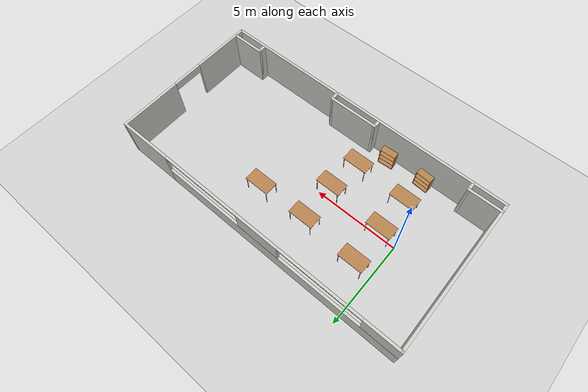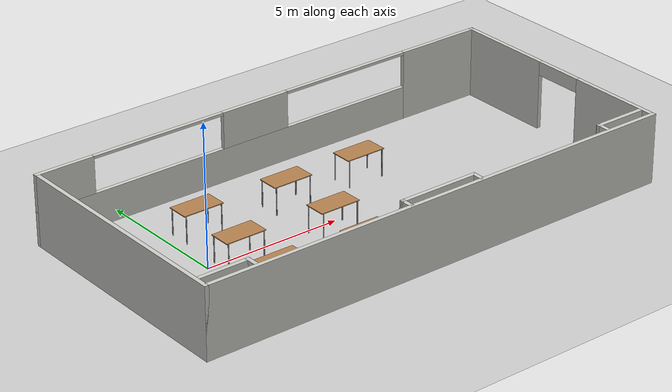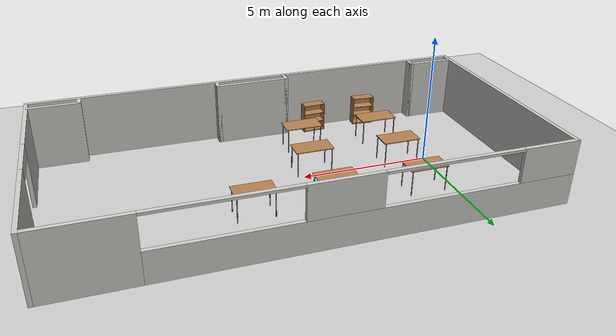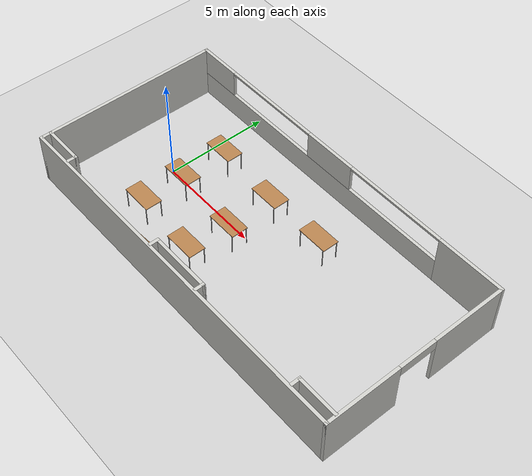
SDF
<sdf version="1.6">
 <world name="default">
  <model name="ground_plane">
   <static>1</static>
   <link name="link">
    <collision name="collision">
     <geometry><plane><normal>0 0 1</normal><size>100 100</size></plane></geometry>
     <surface>
      <contact><collide_bitmask>65535</collide_bitmask></contact>
      <friction><ode><mu>100</mu><mu2>50</mu2></ode></friction>
     </surface>
    </collision>
    <visual name="visual">
     <cast_shadows>0</cast_shadows>
     <geometry><plane><normal>0 0 1</normal><size>100 100</size></plane></geometry>
     <material>
      <script><uri>file://media/materials/scripts/gazebo.material</uri><name>Gazebo/Grey</name></script>
     </material>
    </visual>
   </link>
  </model>
  <model name="lab_room">
   <pose>5.75394 0.057613 0 0 -0 0</pose>
   <link name="Wall_1">
    <collision name="Wall_1_Collision">
     <geometry><box><size>9 0.15 2.5</size></box></geometry>
     <pose>0 0 1.25 0 -0 0</pose>
    </collision>
    <visual name="Wall_1_Visual">
     <pose>0 0 1.25 0 -0 0</pose>
     <geometry><box><size>9 0.15 2.5</size></box></geometry>
     <material>
      <script><uri>file://media/materials/scripts/gazebo.material</uri><name>Gazebo/CeilingTiled</name></script>
      <ambient>1 1 1 1</ambient>
     </material>
     <meta><layer>0</layer></meta>
    </visual>
    <pose>-8.925 0 0 0 -0 -1.5708</pose>
   </link>
   <link name="Wall_10">
    <collision name="Wall_10_Collision">
     <geometry><box><size>0.5 0.15 2.5</size></box></geometry>
     <pose>0 0 1.25 0 -0 0</pose>
    </collision>
    <visual name="Wall_10_Visual">
     <pose>0 0 1.25 0 -0 0</pose>
     <geometry><box><size>0.5 0.15 2.5</size></box></geometry>
     <material>
      <script><uri>file://media/materials/scripts/gazebo.material</uri><name>Gazebo/CeilingTiled</name></script>
      <ambient>1 1 1 1</ambient>
     </material>
     <meta><layer>0</layer></meta>
    </visual>
    <pose>7.0054 -4.11725 0 0 -0 -1.5708</pose>
   </link>
   <link name="Wall_12">
    <collision name="Wall_12_Collision">
     <geometry><box><size>0.5 0.15 2.5</size></box></geometry>
     <pose>0 0 1.25 0 -0 0</pose>
    </collision>
    <visual name="Wall_12_Visual">
     <pose>0 0 1.25 0 -0 0</pose>
     <geometry><box><size>0.5 0.15 2.5</size></box></geometry>
     <material>
      <script><uri>file://media/materials/scripts/gazebo.material</uri><name>Gazebo/CeilingTiled</name></script>
      <ambient>1 1 1 1</ambient>
     </material>
     <meta><layer>0</layer></meta>
    </visual>
    <pose>-1.26173 -4.16952 0 0 -0 1.5708</pose>
   </link>
   <link name="Wall_13">
    <collision name="Wall_13_Collision">
     <geometry><box><size>3 0.15 2.5</size></box></geometry>
     <pose>0 0 1.25 0 -0 0</pose>
    </collision>
    <visual name="Wall_13_Visual">
     <pose>0 0 1.25 0 -0 0</pose>
     <geometry><box><size>3 0.15 2.5</size></box></geometry>
     <material>
      <script><uri>file://media/materials/scripts/gazebo.material</uri><name>Gazebo/CeilingTiled</name></script>
      <ambient>1 1 1 1</ambient>
     </material>
     <meta><layer>0</layer></meta>
    </visual>
    <pose>0.163271 -3.99452 0 0 -0 0</pose>
   </link>
   <link name="Wall_14">
    <collision name="Wall_14_Collision">
     <geometry><box><size>0.5 0.15 2.5</size></box></geometry>
     <pose>0 0 1.25 0 -0 0</pose>
    </collision>
    <visual name="Wall_14_Visual">
     <pose>0 0 1.25 0 -0 0</pose>
     <geometry><box><size>0.5 0.15 2.5</size></box></geometry>
     <material>
      <script><uri>file://media/materials/scripts/gazebo.material</uri><name>Gazebo/CeilingTiled</name></script>
      <ambient>1 1 1 1</ambient>
     </material>
     <meta><layer>0</layer></meta>
    </visual>
    <pose>1.58827 -4.16952 0 0 -0 -1.5708</pose>
   </link>
   <link name="Wall_16">
    <collision name="Wall_16_Collision">
     <geometry><box><size>2 0.15 2.5</size></box></geometry>
     <pose>0 0 1.25 0 -0 0</pose>
    </collision>
    <visual name="Wall_16_Visual">
     <pose>0 0 1.25 0 -0 0</pose>
     <geometry><box><size>2 0.15 2.5</size></box></geometry>
     <material>
      <script><uri>file://media/materials/scripts/gazebo.material</uri><name>Gazebo/CeilingTiled</name></script>
      <ambient>1 1 1 1</ambient>
     </material>
     <meta><layer>0</layer></meta>
    </visual>
    <pose>-7.97989 -3.96236 0 0 -0 0</pose>
   </link>
   <link name="Wall_17">
    <collision name="Wall_17_Collision">
     <geometry><box><size>0.5 0.15 2.5</size></box></geometry>
     <pose>0 0 1.25 0 -0 0</pose>
    </collision>
    <visual name="Wall_17_Visual">
     <pose>0 0 1.25 0 -0 0</pose>
     <geometry><box><size>0.5 0.15 2.5</size></box></geometry>
     <material>
      <script><uri>file://media/materials/scripts/gazebo.material</uri><name>Gazebo/CeilingTiled</name></script>
      <ambient>1 1 1 1</ambient>
     </material>
     <meta><layer>0</layer></meta>
    </visual>
    <pose>-7.05489 -4.13736 0 0 -0 -1.5708</pose>
   </link>
   <link name="Wall_2">
    <collision name="Wall_2_Collision">
     <geometry><box><size>18 0.15 2.5</size></box></geometry>
     <pose>0 0 1.25 0 -0 0</pose>
    </collision>
    <visual name="Wall_2_Visual">
     <pose>0 0 1.25 0 -0 0</pose>
     <geometry><box><size>18 0.15 2.5</size></box></geometry>
     <material>
      <script><uri>file://media/materials/scripts/gazebo.material</uri><name>Gazebo/CeilingTiled</name></script>
      <ambient>1 1 1 1</ambient>
     </material>
     <meta><layer>0</layer></meta>
    </visual>
    <pose>0 -4.425 0 0 -0 0</pose>
   </link>
   <link name="Wall_3">
    <pose>8.925 0 0 0 -0 1.5708</pose>
    <visual name="Wall_3_Visual_0">
     <pose>-2.71005 0 1.25 0 -0 0</pose>
     <geometry><box><size>3.5799 0.15 2.5</size></box></geometry>
     <material>
      <script><uri>file://media/materials/scripts/gazebo.material</uri><name>Gazebo/CeilingTiled</name></script>
      <ambient>1 1 1 1</ambient>
     </material>
     <meta><layer>0</layer></meta>
    </visual>
    <collision name="Wall_3_Collision_0">
     <geometry><box><size>3.5799 0.15 2.5</size></box></geometry>
     <pose>-2.71005 0 1.25 0 -0 0</pose>
    </collision>
    <visual name="Wall_3_Visual_1">
     <pose>2.68995 0 1.25 0 -0 0</pose>
     <geometry><box><size>3.6201 0.15 2.5</size></box></geometry>
     <material>
      <script><uri>file://media/materials/scripts/gazebo.material</uri><name>Gazebo/CeilingTiled</name></script>
      <ambient>1 1 1 1</ambient>
     </material>
     <meta><layer>0</layer></meta>
    </visual>
    <collision name="Wall_3_Collision_1">
     <geometry><box><size>3.6201 0.15 2.5</size></box></geometry>
     <pose>2.68995 0 1.25 0 -0 0</pose>
    </collision>
    <visual name="Wall_3_Visual_2">
     <pose>-0.020099 0 2.25 0 -0 0</pose>
     <geometry><box><size>1.8 0.15 0.5</size></box></geometry>
     <material>
      <script><uri>file://media/materials/scripts/gazebo.material</uri><name>Gazebo/CeilingTiled</name></script>
      <ambient>1 1 1 1</ambient>
     </material>
     <meta><layer>0</layer></meta>
    </visual>
    <collision name="Wall_3_Collision_2">
     <geometry><box><size>1.8 0.15 0.5</size></box></geometry>
     <pose>-0.020099 0 2.25 0 -0 0</pose>
    </collision>
   </link>
   <link name="Wall_4">
    <pose>0 4.425 0 0 -0 3.14159</pose>
    <visual name="Wall_4_Visual_0">
     <pose>-7.38191 0 1.25 0 -0 0</pose>
     <geometry><box><size>3.23617 0.15 2.5</size></box></geometry>
     <material>
      <script><uri>file://media/materials/scripts/gazebo.material</uri><name>Gazebo/CeilingTiled</name></script>
      <ambient>1 1 1 1</ambient>
     </material>
     <meta><layer>0</layer></meta>
    </visual>
    <collision name="Wall_4_Collision_0">
     <geometry><box><size>3.23617 0.15 2.5</size></box></geometry>
     <pose>-7.38191 0 1.25 0 -0 0</pose>
    </collision>
    <visual name="Wall_4_Visual_1">
     <pose>1.61809 0 0.6 0 -0 0</pose>
     <geometry><box><size>14.7638 0.15 1.2</size></box></geometry>
     <material>
      <script><uri>file://media/materials/scripts/gazebo.material</uri><name>Gazebo/CeilingTiled</name></script>
      <ambient>1 1 1 1</ambient>
     </material>
     <meta><layer>0</layer></meta>
    </visual>
    <collision name="Wall_4_Collision_1">
     <geometry><box><size>14.7638 0.15 1.2</size></box></geometry>
     <pose>1.61809 0 0.6 0 -0 0</pose>
    </collision>
    <visual name="Wall_4_Visual_2">
     <pose>0.547697 0 1.85 0 -0 0</pose>
     <geometry><box><size>2.62304 0.15 1.3</size></box></geometry>
     <material>
      <script><uri>file://media/materials/scripts/gazebo.material</uri><name>Gazebo/CeilingTiled</name></script>
      <ambient>1 1 1 1</ambient>
     </material>
     <meta><layer>0</layer></meta>
    </visual>
    <collision name="Wall_4_Collision_2">
     <geometry><box><size>2.62304 0.15 1.3</size></box></geometry>
     <pose>0.547697 0 1.85 0 -0 0</pose>
    </collision>
    <visual name="Wall_4_Visual_3">
     <pose>7.92961 0 1.85 0 -0 0</pose>
     <geometry><box><size>2.14078 0.15 1.3</size></box></geometry>
     <material>
      <script><uri>file://media/materials/scripts/gazebo.material</uri><name>Gazebo/CeilingTiled</name></script>
      <ambient>1 1 1 1</ambient>
     </material>
     <meta><layer>0</layer></meta>
    </visual>
    <collision name="Wall_4_Collision_3">
     <geometry><box><size>2.14078 0.15 1.3</size></box></geometry>
     <pose>7.92961 0 1.85 0 -0 0</pose>
    </collision>
    <visual name="Wall_4_Visual_4">
     <pose>-3.26383 0 2.45 0 -0 0</pose>
     <geometry><box><size>5 0.15 0.1</size></box></geometry>
     <material>
      <script><uri>file://media/materials/scripts/gazebo.material</uri><name>Gazebo/CeilingTiled</name></script>
      <ambient>1 1 1 1</ambient>
     </material>
     <meta><layer>0</layer></meta>
    </visual>
    <collision name="Wall_4_Collision_4">
     <geometry><box><size>5 0.15 0.1</size></box></geometry>
     <pose>-3.26383 0 2.45 0 -0 0</pose>
    </collision>
    <visual name="Wall_4_Visual_5">
     <pose>4.35922 0 2.45 0 -0 0</pose>
     <geometry><box><size>5 0.15 0.1</size></box></geometry>
     <material>
      <script><uri>file://media/materials/scripts/gazebo.material</uri><name>Gazebo/CeilingTiled</name></script>
      <ambient>1 1 1 1</ambient>
     </material>
     <meta><layer>0</layer></meta>
    </visual>
    <collision name="Wall_4_Collision_5">
     <geometry><box><size>5 0.15 0.1</size></box></geometry>
     <pose>4.35922 0 2.45 0 -0 0</pose>
    </collision>
   </link>
   <link name="Wall_9">
    <collision name="Wall_9_Collision">
     <geometry><box><size>2 0.15 2.5</size></box></geometry>
     <pose>0 0 1.25 0 -0 0</pose>
    </collision>
    <visual name="Wall_9_Visual">
     <pose>0 0 1.25 0 -0 0</pose>
     <geometry><box><size>2 0.15 2.5</size></box></geometry>
     <material>
      <script><uri>file://media/materials/scripts/gazebo.material</uri><name>Gazebo/CeilingTiled</name></script>
      <ambient>1 1 1 1</ambient>
     </material>
     <meta><layer>0</layer></meta>
    </visual>
    <pose>7.9304 -3.94225 0 0 -0 3.14159</pose>
   </link>
   <static>1</static>
  </model>
  <model name="table">
   <static>1</static>
   <link name="link">
    <collision name="surface">
     <pose>0 0 1 0 -0 0</pose>
     <geometry><box><size>1.5 0.8 0.03</size></box></geometry>
     <surface><friction><ode><mu>0.6</mu><mu2>0.6</mu2></ode></friction></surface>
    </collision>
    <visual name="visual1">
     <pose>0 0 1 0 -0 0</pose>
     <geometry><box><size>1.5 0.8 0.03</size></box></geometry>
     <material>
      <script><uri>file://media/materials/scripts/gazebo.material</uri><name>Gazebo/Wood</name></script>
     </material>
    </visual>
    <collision name="front_left_leg">
     <pose>0.68 0.38 0.5 0 -0 0</pose>
     <geometry><cylinder><radius>0.02</radius><length>1</length></cylinder></geometry>
    </collision>
    <visual name="front_left_leg">
     <pose>0.68 0.38 0.5 0 -0 0</pose>
     <geometry><cylinder><radius>0.02</radius><length>1</length></cylinder></geometry>
     <material>
      <script><uri>file://media/materials/scripts/gazebo.material</uri><name>Gazebo/Grey</name></script>
     </material>
    </visual>
    <collision name="front_right_leg">
     <pose>0.68 -0.38 0.5 0 -0 0</pose>
     <geometry><cylinder><radius>0.02</radius><length>1</length></cylinder></geometry>
    </collision>
    <visual name="front_right_leg">
     <pose>0.68 -0.38 0.5 0 -0 0</pose>
     <geometry><cylinder><radius>0.02</radius><length>1</length></cylinder></geometry>
     <material>
      <script><uri>file://media/materials/scripts/gazebo.material</uri><name>Gazebo/Grey</name></script>
     </material>
    </visual>
    <collision name="back_right_leg">
     <pose>-0.68 -0.38 0.5 0 -0 0</pose>
     <geometry><cylinder><radius>0.02</radius><length>1</length></cylinder></geometry>
    </collision>
    <visual name="back_right_leg">
     <pose>-0.68 -0.38 0.5 0 -0 0</pose>
     <geometry><cylinder><radius>0.02</radius><length>1</length></cylinder></geometry>
     <material>
      <script><uri>file://media/materials/scripts/gazebo.material</uri><name>Gazebo/Grey</name></script>
     </material>
    </visual>
    <collision name="back_left_leg">
     <pose>-0.68 0.38 0.5 0 -0 0</pose>
     <geometry><cylinder><radius>0.02</radius><length>1</length></cylinder></geometry>
    </collision>
    <visual name="back_left_leg">
     <pose>-0.68 0.38 0.5 0 -0 0</pose>
     <geometry><cylinder><radius>0.02</radius><length>1</length></cylinder></geometry>
     <material>
      <script><uri>file://media/materials/scripts/gazebo.material</uri><name>Gazebo/Grey</name></script>
     </material>
    </visual>
   </link>
   <pose>1.08189 -2.2938 0 0 -0 0</pose>
  </model>
  <model name="table_0">
   <static>1</static>
   <link name="link">
    <collision name="surface">
     <pose>0 0 1 0 -0 0</pose>
     <geometry><box><size>1.5 0.8 0.03</size></box></geometry>
     <surface><friction><ode><mu>0.6</mu><mu2>0.6</mu2></ode></friction></surface>
    </collision>
    <visual name="visual1">
     <pose>0 0 1 0 -0 0</pose>
     <geometry><box><size>1.5 0.8 0.03</size></box></geometry>
     <material>
      <script><uri>file://media/materials/scripts/gazebo.material</uri><name>Gazebo/Wood</name></script>
     </material>
    </visual>
    <collision name="front_left_leg">
     <pose>0.68 0.38 0.5 0 -0 0</pose>
     <geometry><cylinder><radius>0.02</radius><length>1</length></cylinder></geometry>
    </collision>
    <visual name="front_left_leg">
     <pose>0.68 0.38 0.5 0 -0 0</pose>
     <geometry><cylinder><radius>0.02</radius><length>1</length></cylinder></geometry>
     <material>
      <script><uri>file://media/materials/scripts/gazebo.material</uri><name>Gazebo/Grey</name></script>
     </material>
    </visual>
    <collision name="front_right_leg">
     <pose>0.68 -0.38 0.5 0 -0 0</pose>
     <geometry><cylinder><radius>0.02</radius><length>1</length></cylinder></geometry>
    </collision>
    <visual name="front_right_leg">
     <pose>0.68 -0.38 0.5 0 -0 0</pose>
     <geometry><cylinder><radius>0.02</radius><length>1</length></cylinder></geometry>
     <material>
      <script><uri>file://media/materials/scripts/gazebo.material</uri><name>Gazebo/Grey</name></script>
     </material>
    </visual>
    <collision name="back_right_leg">
     <pose>-0.68 -0.38 0.5 0 -0 0</pose>
     <geometry><cylinder><radius>0.02</radius><length>1</length></cylinder></geometry>
    </collision>
    <visual name="back_right_leg">
     <pose>-0.68 -0.38 0.5 0 -0 0</pose>
     <geometry><cylinder><radius>0.02</radius><length>1</length></cylinder></geometry>
     <material>
      <script><uri>file://media/materials/scripts/gazebo.material</uri><name>Gazebo/Grey</name></script>
     </material>
    </visual>
    <collision name="back_left_leg">
     <pose>-0.68 0.38 0.5 0 -0 0</pose>
     <geometry><cylinder><radius>0.02</radius><length>1</length></cylinder></geometry>
    </collision>
    <visual name="back_left_leg">
     <pose>-0.68 0.38 0.5 0 -0 0</pose>
     <geometry><cylinder><radius>0.02</radius><length>1</length></cylinder></geometry>
     <material>
      <script><uri>file://media/materials/scripts/gazebo.material</uri><name>Gazebo/Grey</name></script>
     </material>
    </visual>
   </link>
   <pose>1.06456 -0.205149 0 0 -0 0</pose>
  </model>
  <model name="table_1">
   <static>1</static>
   <link name="link">
    <collision name="surface">
     <pose>0 0 1 0 -0 0</pose>
     <geometry><box><size>1.5 0.8 0.03</size></box></geometry>
     <surface><friction><ode><mu>0.6</mu><mu2>0.6</mu2></ode></friction></surface>
    </collision>
    <visual name="visual1">
     <pose>0 0 1 0 -0 0</pose>
     <geometry><box><size>1.5 0.8 0.03</size></box></geometry>
     <material>
      <script><uri>file://media/materials/scripts/gazebo.material</uri><name>Gazebo/Wood</name></script>
     </material>
    </visual>
    <collision name="front_left_leg">
     <pose>0.68 0.38 0.5 0 -0 0</pose>
     <geometry><cylinder><radius>0.02</radius><length>1</length></cylinder></geometry>
    </collision>
    <visual name="front_left_leg">
     <pose>0.68 0.38 0.5 0 -0 0</pose>
     <geometry><cylinder><radius>0.02</radius><length>1</length></cylinder></geometry>
     <material>
      <script><uri>file://media/materials/scripts/gazebo.material</uri><name>Gazebo/Grey</name></script>
     </material>
    </visual>
    <collision name="front_right_leg">
     <pose>0.68 -0.38 0.5 0 -0 0</pose>
     <geometry><cylinder><radius>0.02</radius><length>1</length></cylinder></geometry>
    </collision>
    <visual name="front_right_leg">
     <pose>0.68 -0.38 0.5 0 -0 0</pose>
     <geometry><cylinder><radius>0.02</radius><length>1</length></cylinder></geometry>
     <material>
      <script><uri>file://media/materials/scripts/gazebo.material</uri><name>Gazebo/Grey</name></script>
     </material>
    </visual>
    <collision name="back_right_leg">
     <pose>-0.68 -0.38 0.5 0 -0 0</pose>
     <geometry><cylinder><radius>0.02</radius><length>1</length></cylinder></geometry>
    </collision>
    <visual name="back_right_leg">
     <pose>-0.68 -0.38 0.5 0 -0 0</pose>
     <geometry><cylinder><radius>0.02</radius><length>1</length></cylinder></geometry>
     <material>
      <script><uri>file://media/materials/scripts/gazebo.material</uri><name>Gazebo/Grey</name></script>
     </material>
    </visual>
    <collision name="back_left_leg">
     <pose>-0.68 0.38 0.5 0 -0 0</pose>
     <geometry><cylinder><radius>0.02</radius><length>1</length></cylinder></geometry>
    </collision>
    <visual name="back_left_leg">
     <pose>-0.68 0.38 0.5 0 -0 0</pose>
     <geometry><cylinder><radius>0.02</radius><length>1</length></cylinder></geometry>
     <material>
      <script><uri>file://media/materials/scripts/gazebo.material</uri><name>Gazebo/Grey</name></script>
     </material>
    </visual>
   </link>
   <pose>1.09796 2.05913 0 0 -0 0</pose>
  </model>
  <model name="table_2">
   <static>1</static>
   <link name="link">
    <collision name="surface">
     <pose>0 0 1 0 -0 0</pose>
     <geometry><box><size>1.5 0.8 0.03</size></box></geometry>
     <surface><friction><ode><mu>0.6</mu><mu2>0.6</mu2></ode></friction></surface>
    </collision>
    <visual name="visual1">
     <pose>0 0 1 0 -0 0</pose>
     <geometry><box><size>1.5 0.8 0.03</size></box></geometry>
     <material>
      <script><uri>file://media/materials/scripts/gazebo.material</uri><name>Gazebo/Wood</name></script>
     </material>
    </visual>
    <collision name="front_left_leg">
     <pose>0.68 0.38 0.5 0 -0 0</pose>
     <geometry><cylinder><radius>0.02</radius><length>1</length></cylinder></geometry>
    </collision>
    <visual name="front_left_leg">
     <pose>0.68 0.38 0.5 0 -0 0</pose>
     <geometry><cylinder><radius>0.02</radius><length>1</length></cylinder></geometry>
     <material>
      <script><uri>file://media/materials/scripts/gazebo.material</uri><name>Gazebo/Grey</name></script>
     </material>
    </visual>
    <collision name="front_right_leg">
     <pose>0.68 -0.38 0.5 0 -0 0</pose>
     <geometry><cylinder><radius>0.02</radius><length>1</length></cylinder></geometry>
    </collision>
    <visual name="front_right_leg">
     <pose>0.68 -0.38 0.5 0 -0 0</pose>
     <geometry><cylinder><radius>0.02</radius><length>1</length></cylinder></geometry>
     <material>
      <script><uri>file://media/materials/scripts/gazebo.material</uri><name>Gazebo/Grey</name></script>
     </material>
    </visual>
    <collision name="back_right_leg">
     <pose>-0.68 -0.38 0.5 0 -0 0</pose>
     <geometry><cylinder><radius>0.02</radius><length>1</length></cylinder></geometry>
    </collision>
    <visual name="back_right_leg">
     <pose>-0.68 -0.38 0.5 0 -0 0</pose>
     <geometry><cylinder><radius>0.02</radius><length>1</length></cylinder></geometry>
     <material>
      <script><uri>file://media/materials/scripts/gazebo.material</uri><name>Gazebo/Grey</name></script>
     </material>
    </visual>
    <collision name="back_left_leg">
     <pose>-0.68 0.38 0.5 0 -0 0</pose>
     <geometry><cylinder><radius>0.02</radius><length>1</length></cylinder></geometry>
    </collision>
    <visual name="back_left_leg">
     <pose>-0.68 0.38 0.5 0 -0 0</pose>
     <geometry><cylinder><radius>0.02</radius><length>1</length></cylinder></geometry>
     <material>
      <script><uri>file://media/materials/scripts/gazebo.material</uri><name>Gazebo/Grey</name></script>
     </material>
    </visual>
   </link>
   <pose>4.46085 1.83924 0 0 -0 0</pose>
  </model>
  <model name="table_3">
   <static>1</static>
   <link name="link">
    <collision name="surface">
     <pose>0 0 1 0 -0 0</pose>
     <geometry><box><size>1.5 0.8 0.03</size></box></geometry>
     <surface><friction><ode><mu>0.6</mu><mu2>0.6</mu2></ode></friction></surface>
    </collision>
    <visual name="visual1">
     <pose>0 0 1 0 -0 0</pose>
     <geometry><box><size>1.5 0.8 0.03</size></box></geometry>
     <material>
      <script><uri>file://media/materials/scripts/gazebo.material</uri><name>Gazebo/Wood</name></script>
     </material>
    </visual>
    <collision name="front_left_leg">
     <pose>0.68 0.38 0.5 0 -0 0</pose>
     <geometry><cylinder><radius>0.02</radius><length>1</length></cylinder></geometry>
    </collision>
    <visual name="front_left_leg">
     <pose>0.68 0.38 0.5 0 -0 0</pose>
     <geometry><cylinder><radius>0.02</radius><length>1</length></cylinder></geometry>
     <material>
      <script><uri>file://media/materials/scripts/gazebo.material</uri><name>Gazebo/Grey</name></script>
     </material>
    </visual>
    <collision name="front_right_leg">
     <pose>0.68 -0.38 0.5 0 -0 0</pose>
     <geometry><cylinder><radius>0.02</radius><length>1</length></cylinder></geometry>
    </collision>
    <visual name="front_right_leg">
     <pose>0.68 -0.38 0.5 0 -0 0</pose>
     <geometry><cylinder><radius>0.02</radius><length>1</length></cylinder></geometry>
     <material>
      <script><uri>file://media/materials/scripts/gazebo.material</uri><name>Gazebo/Grey</name></script>
     </material>
    </visual>
    <collision name="back_right_leg">
     <pose>-0.68 -0.38 0.5 0 -0 0</pose>
     <geometry><cylinder><radius>0.02</radius><length>1</length></cylinder></geometry>
    </collision>
    <visual name="back_right_leg">
     <pose>-0.68 -0.38 0.5 0 -0 0</pose>
     <geometry><cylinder><radius>0.02</radius><length>1</length></cylinder></geometry>
     <material>
      <script><uri>file://media/materials/scripts/gazebo.material</uri><name>Gazebo/Grey</name></script>
     </material>
    </visual>
    <collision name="back_left_leg">
     <pose>-0.68 0.38 0.5 0 -0 0</pose>
     <geometry><cylinder><radius>0.02</radius><length>1</length></cylinder></geometry>
    </collision>
    <visual name="back_left_leg">
     <pose>-0.68 0.38 0.5 0 -0 0</pose>
     <geometry><cylinder><radius>0.02</radius><length>1</length></cylinder></geometry>
     <material>
      <script><uri>file://media/materials/scripts/gazebo.material</uri><name>Gazebo/Grey</name></script>
     </material>
    </visual>
   </link>
   <pose>4.53977 -0.479619 0 0 -0 0</pose>
  </model>
  <model name="table_4">
   <static>1</static>
   <link name="link">
    <collision name="surface">
     <pose>0 0 1 0 -0 0</pose>
     <geometry><box><size>1.5 0.8 0.03</size></box></geometry>
     <surface><friction><ode><mu>0.6</mu><mu2>0.6</mu2></ode></friction></surface>
    </collision>
    <visual name="visual1">
     <pose>0 0 1 0 -0 0</pose>
     <geometry><box><size>1.5 0.8 0.03</size></box></geometry>
     <material>
      <script><uri>file://media/materials/scripts/gazebo.material</uri><name>Gazebo/Wood</name></script>
     </material>
    </visual>
    <collision name="front_left_leg">
     <pose>0.68 0.38 0.5 0 -0 0</pose>
     <geometry><cylinder><radius>0.02</radius><length>1</length></cylinder></geometry>
    </collision>
    <visual name="front_left_leg">
     <pose>0.68 0.38 0.5 0 -0 0</pose>
     <geometry><cylinder><radius>0.02</radius><length>1</length></cylinder></geometry>
     <material>
      <script><uri>file://media/materials/scripts/gazebo.material</uri><name>Gazebo/Grey</name></script>
     </material>
    </visual>
    <collision name="front_right_leg">
     <pose>0.68 -0.38 0.5 0 -0 0</pose>
     <geometry><cylinder><radius>0.02</radius><length>1</length></cylinder></geometry>
    </collision>
    <visual name="front_right_leg">
     <pose>0.68 -0.38 0.5 0 -0 0</pose>
     <geometry><cylinder><radius>0.02</radius><length>1</length></cylinder></geometry>
     <material>
      <script><uri>file://media/materials/scripts/gazebo.material</uri><name>Gazebo/Grey</name></script>
     </material>
    </visual>
    <collision name="back_right_leg">
     <pose>-0.68 -0.38 0.5 0 -0 0</pose>
     <geometry><cylinder><radius>0.02</radius><length>1</length></cylinder></geometry>
    </collision>
    <visual name="back_right_leg">
     <pose>-0.68 -0.38 0.5 0 -0 0</pose>
     <geometry><cylinder><radius>0.02</radius><length>1</length></cylinder></geometry>
     <material>
      <script><uri>file://media/materials/scripts/gazebo.material</uri><name>Gazebo/Grey</name></script>
     </material>
    </visual>
    <collision name="back_left_leg">
     <pose>-0.68 0.38 0.5 0 -0 0</pose>
     <geometry><cylinder><radius>0.02</radius><length>1</length></cylinder></geometry>
    </collision>
    <visual name="back_left_leg">
     <pose>-0.68 0.38 0.5 0 -0 0</pose>
     <geometry><cylinder><radius>0.02</radius><length>1</length></cylinder></geometry>
     <material>
      <script><uri>file://media/materials/scripts/gazebo.material</uri><name>Gazebo/Grey</name></script>
     </material>
    </visual>
   </link>
   <pose>4.27247 -2.47329 0 0 -0 0</pose>
  </model>
  <model name="table_7">
   <static>1</static>
   <link name="link">
    <collision name="surface">
     <pose>0 0 1 0 -0 0</pose>
     <geometry><box><size>1.5 0.8 0.03</size></box></geometry>
     <surface><friction><ode><mu>0.6</mu><mu2>0.6</mu2></ode></friction></surface>
    </collision>
    <visual name="visual1">
     <pose>0 0 1 0 -0 0</pose>
     <geometry><box><size>1.5 0.8 0.03</size></box></geometry>
     <material>
      <script><uri>file://media/materials/scripts/gazebo.material</uri><name>Gazebo/Wood</name></script>
     </material>
    </visual>
    <collision name="front_left_leg">
     <pose>0.68 0.38 0.5 0 -0 0</pose>
     <geometry><cylinder><radius>0.02</radius><length>1</length></cylinder></geometry>
    </collision>
    <visual name="front_left_leg">
     <pose>0.68 0.38 0.5 0 -0 0</pose>
     <geometry><cylinder><radius>0.02</radius><length>1</length></cylinder></geometry>
     <material>
      <script><uri>file://media/materials/scripts/gazebo.material</uri><name>Gazebo/Grey</name></script>
     </material>
    </visual>
    <collision name="front_right_leg">
     <pose>0.68 -0.38 0.5 0 -0 0</pose>
     <geometry><cylinder><radius>0.02</radius><length>1</length></cylinder></geometry>
    </collision>
    <visual name="front_right_leg">
     <pose>0.68 -0.38 0.5 0 -0 0</pose>
     <geometry><cylinder><radius>0.02</radius><length>1</length></cylinder></geometry>
     <material>
      <script><uri>file://media/materials/scripts/gazebo.material</uri><name>Gazebo/Grey</name></script>
     </material>
    </visual>
    <collision name="back_right_leg">
     <pose>-0.68 -0.38 0.5 0 -0 0</pose>
     <geometry><cylinder><radius>0.02</radius><length>1</length></cylinder></geometry>
    </collision>
    <visual name="back_right_leg">
     <pose>-0.68 -0.38 0.5 0 -0 0</pose>
     <geometry><cylinder><radius>0.02</radius><length>1</length></cylinder></geometry>
     <material>
      <script><uri>file://media/materials/scripts/gazebo.material</uri><name>Gazebo/Grey</name></script>
     </material>
    </visual>
    <collision name="back_left_leg">
     <pose>-0.68 0.38 0.5 0 -0 0</pose>
     <geometry><cylinder><radius>0.02</radius><length>1</length></cylinder></geometry>
    </collision>
    <visual name="back_left_leg">
     <pose>-0.68 0.38 0.5 0 -0 0</pose>
     <geometry><cylinder><radius>0.02</radius><length>1</length></cylinder></geometry>
     <material>
      <script><uri>file://media/materials/scripts/gazebo.material</uri><name>Gazebo/Grey</name></script>
     </material>
    </visual>
   </link>
   <pose>7.47591 1.86545 0 0 -0 0</pose>
  </model>
  <model name="bookshelf_0">
   <static>1</static>
   <link name="link">
    <inertial><mass>1</mass></inertial>
    <collision name="back">
     <pose>0 0.005 0.6 0 -0 0</pose>
     <geometry><box><size>0.9 0.01 1.2</size></box></geometry>
    </collision>
    <visual name="visual1">
     <pose>0 0.005 0.6 0 -0 0</pose>
     <geometry><box><size>0.9 0.01 1.2</size></box></geometry>
     <material>
      <script><uri>file://media/materials/scripts/gazebo.material</uri><name>Gazebo/Wood</name></script>
     </material>
    </visual>
    <collision name="left_side">
     <pose>0.45 -0.195 0.6 0 -0 0</pose>
     <geometry><box><size>0.02 0.4 1.2</size></box></geometry>
    </collision>
    <visual name="visual2">
     <pose>0.45 -0.195 0.6 0 -0 0</pose>
     <geometry><box><size>0.02 0.4 1.2</size></box></geometry>
     <material>
      <script><uri>file://media/materials/scripts/gazebo.material</uri><name>Gazebo/Wood</name></script>
     </material>
    </visual>
    <collision name="right_side">
     <pose>-0.45 -0.195 0.6 0 -0 0</pose>
     <geometry><box><size>0.02 0.4 1.2</size></box></geometry>
    </collision>
    <visual name="visual3">
     <pose>-0.45 -0.195 0.6 0 -0 0</pose>
     <geometry><box><size>0.02 0.4 1.2</size></box></geometry>
     <material>
      <script><uri>file://media/materials/scripts/gazebo.material</uri><name>Gazebo/Wood</name></script>
     </material>
    </visual>
    <collision name="bottom">
     <pose>0 -0.195 0.03 0 -0 0</pose>
     <geometry><box><size>0.88 0.4 0.06</size></box></geometry>
    </collision>
    <visual name="visual4">
     <pose>0 -0.195 0.03 0 -0 0</pose>
     <geometry><box><size>0.88 0.4 0.06</size></box></geometry>
     <material>
      <script><uri>file://media/materials/scripts/gazebo.material</uri><name>Gazebo/Wood</name></script>
     </material>
    </visual>
    <collision name="top">
     <pose>0 -0.195 1.19 0 -0 0</pose>
     <geometry><box><size>0.88 0.4 0.02</size></box></geometry>
    </collision>
    <visual name="visual5">
     <pose>0 -0.195 1.19 0 -0 0</pose>
     <geometry><box><size>0.88 0.4 0.02</size></box></geometry>
     <material>
      <script><uri>file://media/materials/scripts/gazebo.material</uri><name>Gazebo/Wood</name></script>
     </material>
    </visual>
    <collision name="low_shelf">
     <pose>0 -0.195 0.43 0 -0 0</pose>
     <geometry><box><size>0.88 0.4 0.02</size></box></geometry>
    </collision>
    <visual name="visual6">
     <pose>0 -0.195 0.43 0 -0 0</pose>
     <geometry><box><size>0.88 0.4 0.02</size></box></geometry>
     <material>
      <script><uri>file://media/materials/scripts/gazebo.material</uri><name>Gazebo/Wood</name></script>
     </material>
    </visual>
    <collision name="high_shelf">
     <pose>0 -0.195 0.8 0 -0 0</pose>
     <geometry><box><size>0.88 0.4 0.02</size></box></geometry>
    </collision>
    <visual name="visual7">
     <pose>0 -0.195 0.8 0 -0 0</pose>
     <geometry><box><size>0.88 0.4 0.02</size></box></geometry>
     <material>
      <script><uri>file://media/materials/scripts/gazebo.material</uri><name>Gazebo/Wood</name></script>
     </material>
    </visual>
   </link>
   <pose>3.28547 -4.10068 0 0 0 -3.08014</pose>
  </model>
  <model name="bookshelf_2">
   <static>1</static>
   <link name="link">
    <inertial><mass>1</mass></inertial>
    <collision name="back">
     <pose>0 0.005 0.6 0 -0 0</pose>
     <geometry><box><size>0.9 0.01 1.2</size></box></geometry>
    </collision>
    <visual name="visual1">
     <pose>0 0.005 0.6 0 -0 0</pose>
     <geometry><box><size>0.9 0.01 1.2</size></box></geometry>
     <material>
      <script><uri>file://media/materials/scripts/gazebo.material</uri><name>Gazebo/Wood</name></script>
     </material>
    </visual>
    <collision name="left_side">
     <pose>0.45 -0.195 0.6 0 -0 0</pose>
     <geometry><box><size>0.02 0.4 1.2</size></box></geometry>
    </collision>
    <visual name="visual2">
     <pose>0.45 -0.195 0.6 0 -0 0</pose>
     <geometry><box><size>0.02 0.4 1.2</size></box></geometry>
     <material>
      <script><uri>file://media/materials/scripts/gazebo.material</uri><name>Gazebo/Wood</name></script>
     </material>
    </visual>
    <collision name="right_side">
     <pose>-0.45 -0.195 0.6 0 -0 0</pose>
     <geometry><box><size>0.02 0.4 1.2</size></box></geometry>
    </collision>
    <visual name="visual3">
     <pose>-0.45 -0.195 0.6 0 -0 0</pose>
     <geometry><box><size>0.02 0.4 1.2</size></box></geometry>
     <material>
      <script><uri>file://media/materials/scripts/gazebo.material</uri><name>Gazebo/Wood</name></script>
     </material>
    </visual>
    <collision name="bottom">
     <pose>0 -0.195 0.03 0 -0 0</pose>
     <geometry><box><size>0.88 0.4 0.06</size></box></geometry>
    </collision>
    <visual name="visual4">
     <pose>0 -0.195 0.03 0 -0 0</pose>
     <geometry><box><size>0.88 0.4 0.06</size></box></geometry>
     <material>
      <script><uri>file://media/materials/scripts/gazebo.material</uri><name>Gazebo/Wood</name></script>
     </material>
    </visual>
    <collision name="top">
     <pose>0 -0.195 1.19 0 -0 0</pose>
     <geometry><box><size>0.88 0.4 0.02</size></box></geometry>
    </collision>
    <visual name="visual5">
     <pose>0 -0.195 1.19 0 -0 0</pose>
     <geometry><box><size>0.88 0.4 0.02</size></box></geometry>
     <material>
      <script><uri>file://media/materials/scripts/gazebo.material</uri><name>Gazebo/Wood</name></script>
     </material>
    </visual>
    <collision name="low_shelf">
     <pose>0 -0.195 0.43 0 -0 0</pose>
     <geometry><box><size>0.88 0.4 0.02</size></box></geometry>
    </collision>
    <visual name="visual6">
     <pose>0 -0.195 0.43 0 -0 0</pose>
     <geometry><box><size>0.88 0.4 0.02</size></box></geometry>
     <material>
      <script><uri>file://media/materials/scripts/gazebo.material</uri><name>Gazebo/Wood</name></script>
     </material>
    </visual>
    <collision name="high_shelf">
     <pose>0 -0.195 0.8 0 -0 0</pose>
     <geometry><box><size>0.88 0.4 0.02</size></box></geometry>
    </collision>
    <visual name="visual7">
     <pose>0 -0.195 0.8 0 -0 0</pose>
     <geometry><box><size>0.88 0.4 0.02</size></box></geometry>
     <material>
      <script><uri>file://media/materials/scripts/gazebo.material</uri><name>Gazebo/Wood</name></script>
     </material>
    </visual>
   </link>
   <pose>0.947933 -4.15405 0 0 -0 3.08632</pose>
  </model>
 </world>
</sdf>
